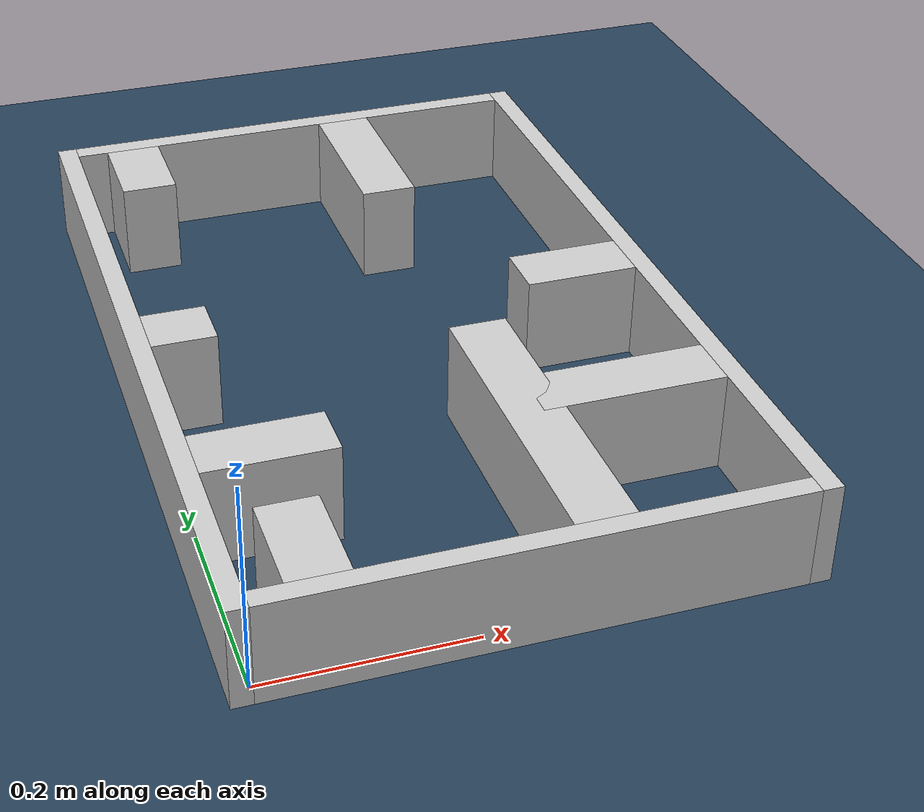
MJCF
<?xml version="1.0" ?>
<mujoco model="generated_real_template">
  <compiler angle="degree"/>
  <option timestep="0.002" integrator="implicitfast" iterations="100" cone="elliptic"/>
  <default>
    <geom density="1"/>
  </default>
  <asset>
    <texture builtin="gradient" height="3072" rgb1="0.3 0.5 0.7" rgb2="0 0 0" type="skybox" width="512"/>
    <texture builtin="checker" height="300" mark="edge" markrgb="0.8 0.8 0.8" name="groundplane" rgb1="0.2 0.3 0.4" rgb2="0.1 0.2 0.3" type="2d" width="300"/>
    <material name="groundplane" reflectance="0.2" texrepeat="5 5" texture="groundplane" texuniform="true"/>
  </asset>
  <worldbody>
    <light dir="0 0 -1" directional="true" pos="0 0 1.5"/>
    <geom name="floor" type="plane" condim="4" friction="0.5 0.005 0.001" material="groundplane" size="0 0 0.05"/>
    <body name="walls">
      <geom name="wall_boundary_left" type="box" condim="4" friction="1.0 0.005 0.0001" rgba="0.8 0.8 0.8 1" pos="-0.010000 0.387500 0.050000" euler="0 0 0.000000" size="0.010000 0.407500 0.050000"/>
      <geom name="wall_boundary_right" type="box" condim="4" friction="1.0 0.005 0.0001" rgba="0.8 0.8 0.8 1" pos="0.500000 0.387500 0.050000" euler="0 0 0.000000" size="0.010000 0.407500 0.050000"/>
      <geom name="wall_boundary_bottom" type="box" condim="4" friction="1.0 0.005 0.0001" rgba="0.8 0.8 0.8 1" pos="0.245000 -0.010000 0.050000" euler="0 0 0.000000" size="0.245000 0.010000 0.050000"/>
      <geom name="wall_boundary_top" type="box" condim="4" friction="1.0 0.005 0.0001" rgba="0.8 0.8 0.8 1" pos="0.245000 0.785000 0.050000" euler="0 0 0.000000" size="0.245000 0.010000 0.050000"/>
      <geom name="wall_inner_1_1" type="box" condim="4" friction="1.0 0.005 0.0001" rgba="0.8 0.8 0.8 1" pos="0.062979 0.187863 0.050000" euler="0 0 0.000000" size="0.062979 0.028500 0.050000"/>
      <geom name="wall_inner_1_2" type="box" condim="4" friction="1.0 0.005 0.0001" rgba="0.8 0.8 0.8 1" pos="0.400734 0.187863 0.050000" euler="0 0 0.000000" size="0.089266 0.028500 0.050000"/>
      <geom name="wall_inner_2_1" type="box" condim="4" friction="1.0 0.005 0.0001" rgba="0.8 0.8 0.8 1" pos="0.060453 0.050257 0.050000" euler="0 0 90.000000" size="0.050257 0.028500 0.050000"/>
      <geom name="wall_inner_2_2" type="box" condim="4" friction="1.0 0.005 0.0001" rgba="0.8 0.8 0.8 1" pos="0.060453 0.726645 0.050000" euler="0 0 90.000000" size="0.048355 0.028500 0.050000"/>
      <geom name="wall_inner_3_1" type="box" condim="4" friction="1.0 0.005 0.0001" rgba="0.8 0.8 0.8 1" pos="0.303941 0.157382 0.050000" euler="0 0 90.000000" size="0.157382 0.028500 0.050000"/>
      <geom name="wall_inner_3_2" type="box" condim="4" friction="1.0 0.005 0.0001" rgba="0.8 0.8 0.8 1" pos="0.303941 0.685347 0.050000" euler="0 0 90.000000" size="0.089653 0.028500 0.050000"/>
      <geom name="wall_inner_4_1" type="box" condim="4" friction="1.0 0.005 0.0001" rgba="0.8 0.8 0.8 1" pos="0.031915 0.394646 0.050000" euler="0 0 0.000000" size="0.031915 0.028500 0.050000"/>
      <geom name="wall_inner_4_2" type="box" condim="4" friction="1.0 0.005 0.0001" rgba="0.8 0.8 0.8 1" pos="0.433259 0.394646 0.050000" euler="0 0 0.000000" size="0.056741 0.028500 0.050000"/>
    </body>
  </worldbody>
</mujoco>
